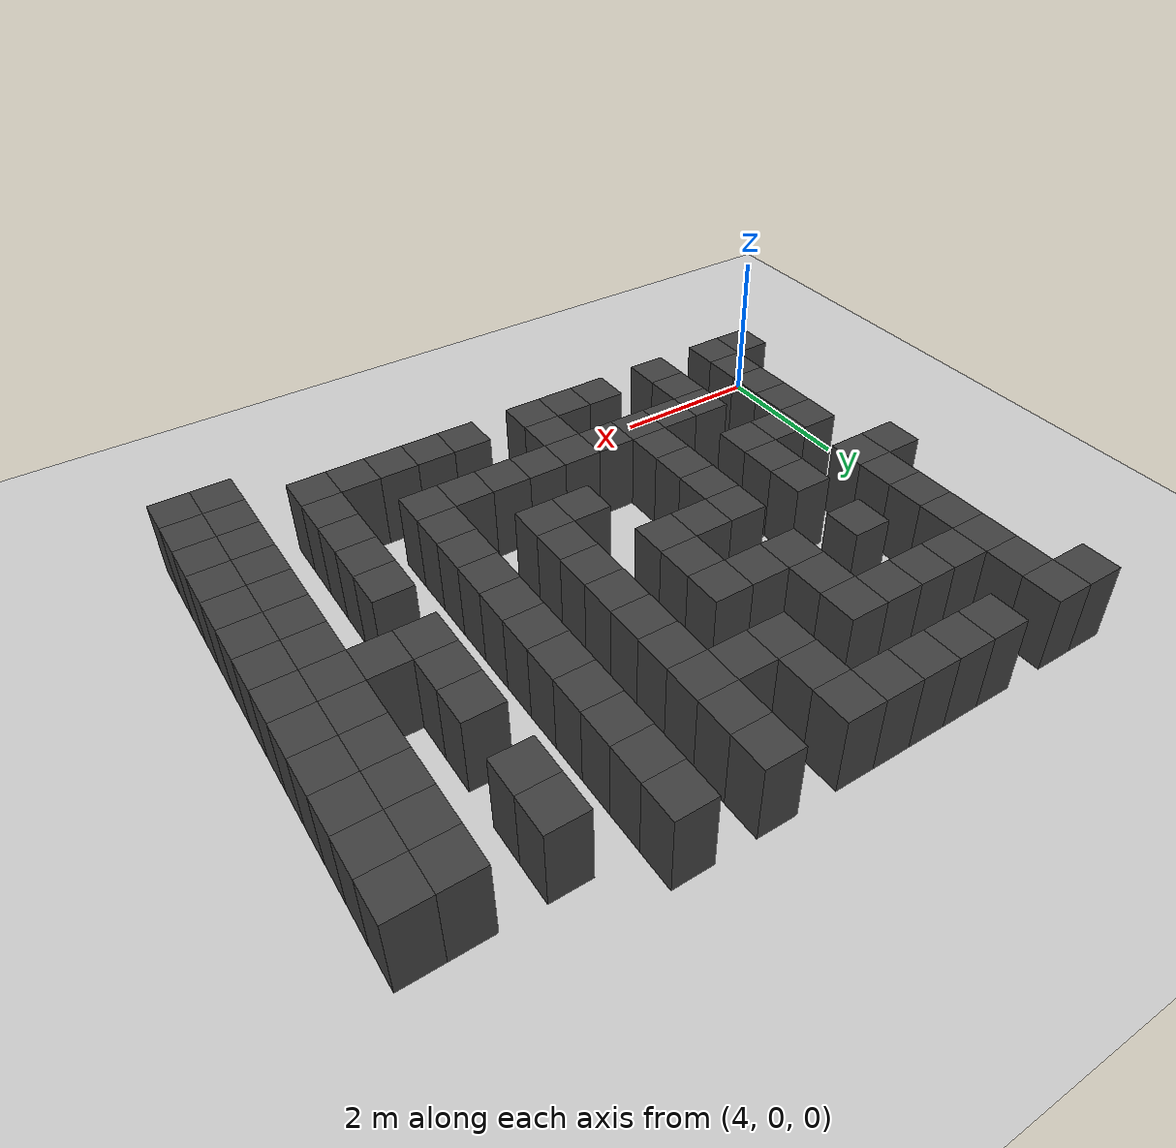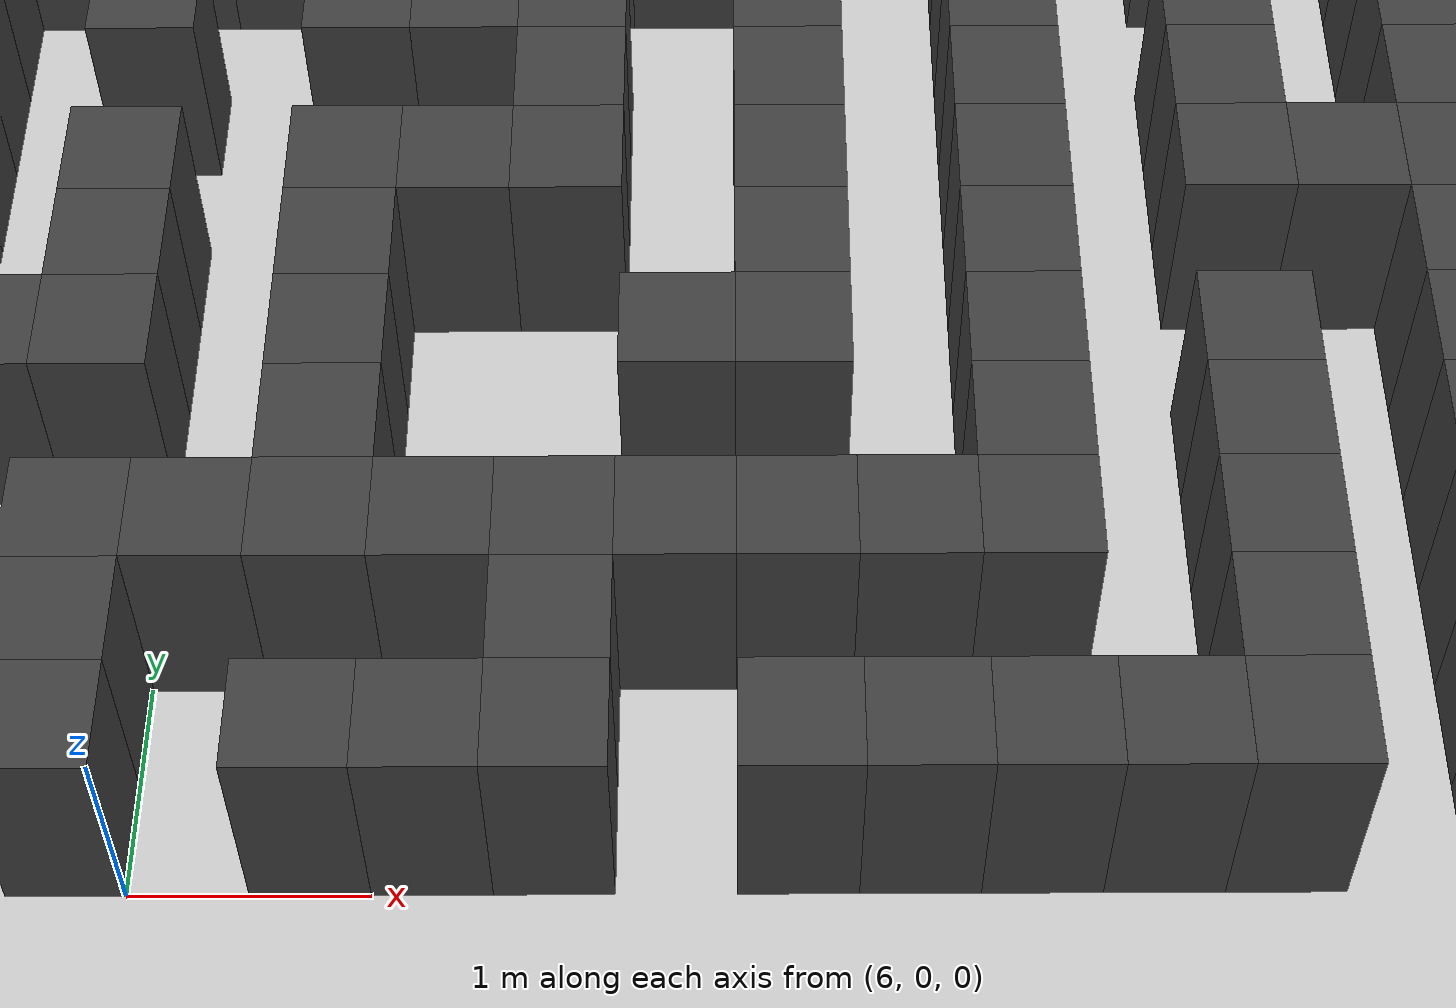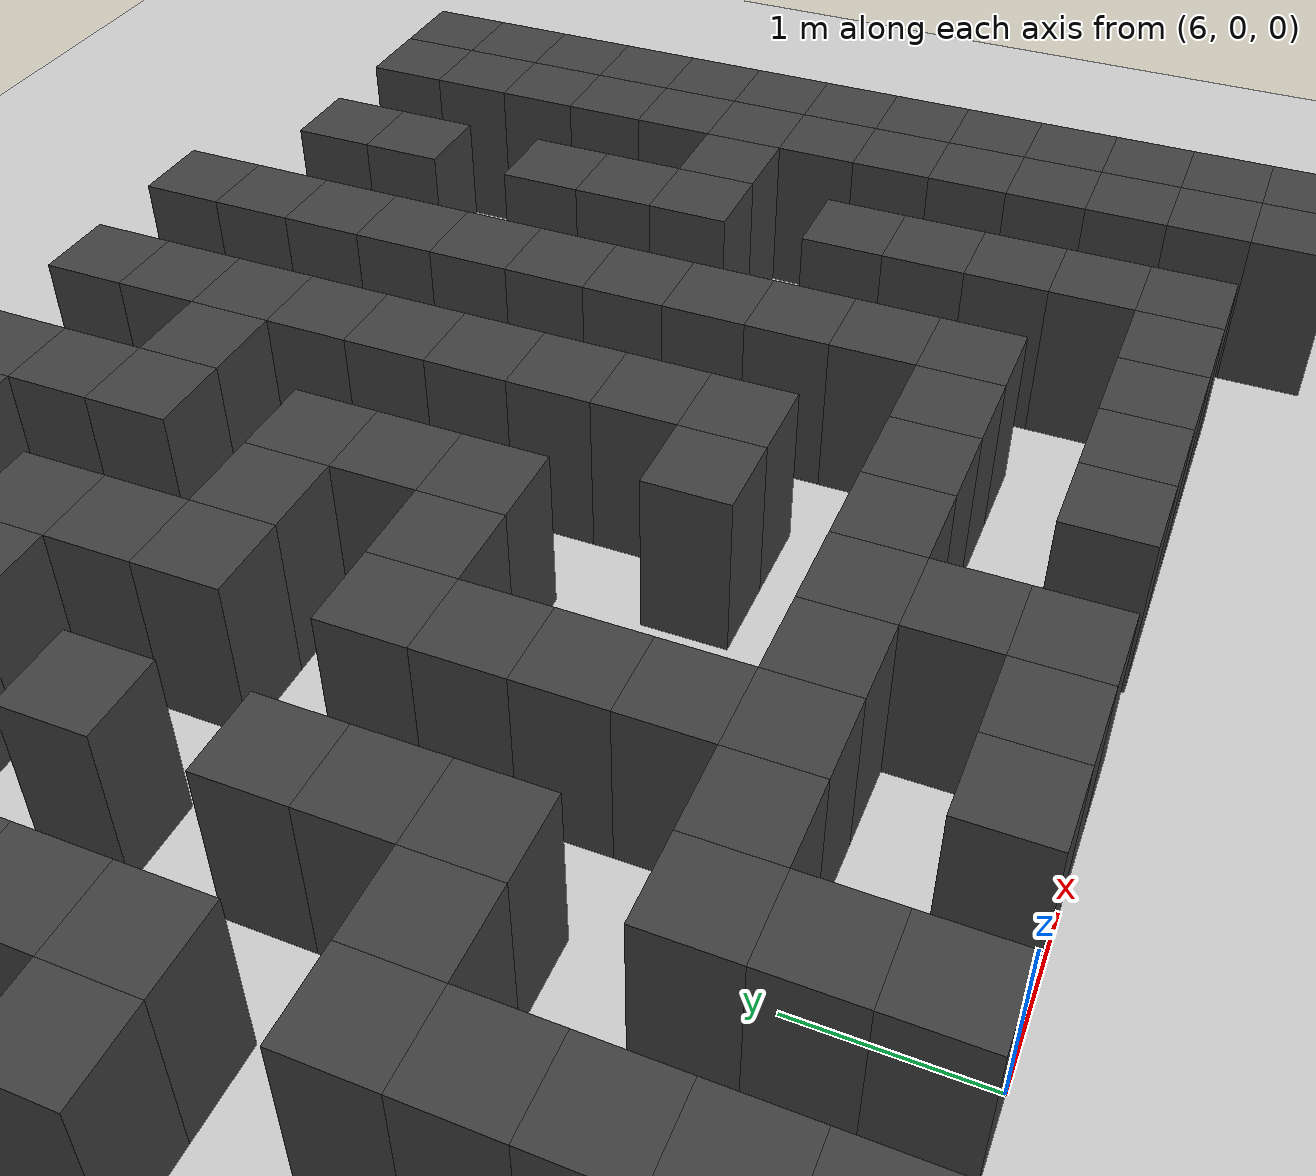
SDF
<sdf version="1.7">
 <world name="map_18505">
  <model name="ground_plane">
   <static>true</static>
   <link name="link">
    <collision name="collision">
     <geometry><plane><normal>0 0 1</normal><size>200 200</size></plane></geometry>
    </collision>
    <visual name="visual">
     <geometry><plane><normal>0 0 1</normal><size>200 200</size></plane></geometry>
     <material><ambient>0.8 0.8 0.8 1</ambient><diffuse>0.8 0.8 0.8 1</diffuse></material>
    </visual>
   </link>
  </model>
  <model name="maze_environment">
   <static>true</static>
   <link name="wall_331">
    <pose>4.250 6.250 0.500 0 0 0</pose>
    <collision name="col"><geometry><box><size>0.5 0.5 1.0</size></box></geometry></collision>
    <visual name="vis">
     <geometry><box><size>0.5 0.5 1.0</size></box></geometry>
     <material><ambient>0.15 0.15 0.15 1</ambient><diffuse>0.25 0.25 0.25 1</diffuse></material>
    </visual>
   </link>
   <link name="wall_332">
    <pose>4.750 6.250 0.500 0 0 0</pose>
    <collision name="col"><geometry><box><size>0.5 0.5 1.0</size></box></geometry></collision>
    <visual name="vis">
     <geometry><box><size>0.5 0.5 1.0</size></box></geometry>
     <material><ambient>0.15 0.15 0.15 1</ambient><diffuse>0.25 0.25 0.25 1</diffuse></material>
    </visual>
   </link>
   <link name="wall_333">
    <pose>5.750 6.250 0.500 0 0 0</pose>
    <collision name="col"><geometry><box><size>0.5 0.5 1.0</size></box></geometry></collision>
    <visual name="vis">
     <geometry><box><size>0.5 0.5 1.0</size></box></geometry>
     <material><ambient>0.15 0.15 0.15 1</ambient><diffuse>0.25 0.25 0.25 1</diffuse></material>
    </visual>
   </link>
   <link name="wall_334">
    <pose>6.250 6.250 0.500 0 0 0</pose>
    <collision name="col"><geometry><box><size>0.5 0.5 1.0</size></box></geometry></collision>
    <visual name="vis">
     <geometry><box><size>0.5 0.5 1.0</size></box></geometry>
     <material><ambient>0.15 0.15 0.15 1</ambient><diffuse>0.25 0.25 0.25 1</diffuse></material>
    </visual>
   </link>
   <link name="wall_335">
    <pose>6.750 6.250 0.500 0 0 0</pose>
    <collision name="col"><geometry><box><size>0.5 0.5 1.0</size></box></geometry></collision>
    <visual name="vis">
     <geometry><box><size>0.5 0.5 1.0</size></box></geometry>
     <material><ambient>0.15 0.15 0.15 1</ambient><diffuse>0.25 0.25 0.25 1</diffuse></material>
    </visual>
   </link>
   <link name="wall_336">
    <pose>7.250 6.250 0.500 0 0 0</pose>
    <collision name="col"><geometry><box><size>0.5 0.5 1.0</size></box></geometry></collision>
    <visual name="vis">
     <geometry><box><size>0.5 0.5 1.0</size></box></geometry>
     <material><ambient>0.15 0.15 0.15 1</ambient><diffuse>0.25 0.25 0.25 1</diffuse></material>
    </visual>
   </link>
   <link name="wall_337">
    <pose>7.750 6.250 0.500 0 0 0</pose>
    <collision name="col"><geometry><box><size>0.5 0.5 1.0</size></box></geometry></collision>
    <visual name="vis">
     <geometry><box><size>0.5 0.5 1.0</size></box></geometry>
     <material><ambient>0.15 0.15 0.15 1</ambient><diffuse>0.25 0.25 0.25 1</diffuse></material>
    </visual>
   </link>
   <link name="wall_338">
    <pose>8.750 6.250 0.500 0 0 0</pose>
    <collision name="col"><geometry><box><size>0.5 0.5 1.0</size></box></geometry></collision>
    <visual name="vis">
     <geometry><box><size>0.5 0.5 1.0</size></box></geometry>
     <material><ambient>0.15 0.15 0.15 1</ambient><diffuse>0.25 0.25 0.25 1</diffuse></material>
    </visual>
   </link>
   <link name="wall_339">
    <pose>9.750 6.250 0.500 0 0 0</pose>
    <collision name="col"><geometry><box><size>0.5 0.5 1.0</size></box></geometry></collision>
    <visual name="vis">
     <geometry><box><size>0.5 0.5 1.0</size></box></geometry>
     <material><ambient>0.15 0.15 0.15 1</ambient><diffuse>0.25 0.25 0.25 1</diffuse></material>
    </visual>
   </link>
   <link name="wall_352">
    <pose>4.750 5.750 0.500 0 0 0</pose>
    <collision name="col"><geometry><box><size>0.5 0.5 1.0</size></box></geometry></collision>
    <visual name="vis">
     <geometry><box><size>0.5 0.5 1.0</size></box></geometry>
     <material><ambient>0.15 0.15 0.15 1</ambient><diffuse>0.25 0.25 0.25 1</diffuse></material>
    </visual>
   </link>
   <link name="wall_353">
    <pose>7.750 5.750 0.500 0 0 0</pose>
    <collision name="col"><geometry><box><size>0.5 0.5 1.0</size></box></geometry></collision>
    <visual name="vis">
     <geometry><box><size>0.5 0.5 1.0</size></box></geometry>
     <material><ambient>0.15 0.15 0.15 1</ambient><diffuse>0.25 0.25 0.25 1</diffuse></material>
    </visual>
   </link>
   <link name="wall_354">
    <pose>8.750 5.750 0.500 0 0 0</pose>
    <collision name="col"><geometry><box><size>0.5 0.5 1.0</size></box></geometry></collision>
    <visual name="vis">
     <geometry><box><size>0.5 0.5 1.0</size></box></geometry>
     <material><ambient>0.15 0.15 0.15 1</ambient><diffuse>0.25 0.25 0.25 1</diffuse></material>
    </visual>
   </link>
   <link name="wall_355">
    <pose>9.750 5.750 0.500 0 0 0</pose>
    <collision name="col"><geometry><box><size>0.5 0.5 1.0</size></box></geometry></collision>
    <visual name="vis">
     <geometry><box><size>0.5 0.5 1.0</size></box></geometry>
     <material><ambient>0.15 0.15 0.15 1</ambient><diffuse>0.25 0.25 0.25 1</diffuse></material>
    </visual>
   </link>
   <link name="wall_356">
    <pose>10.750 5.750 0.500 0 0 0</pose>
    <collision name="col"><geometry><box><size>0.5 0.5 1.0</size></box></geometry></collision>
    <visual name="vis">
     <geometry><box><size>0.5 0.5 1.0</size></box></geometry>
     <material><ambient>0.15 0.15 0.15 1</ambient><diffuse>0.25 0.25 0.25 1</diffuse></material>
    </visual>
   </link>
   <link name="wall_357">
    <pose>11.750 5.750 0.500 0 0 0</pose>
    <collision name="col"><geometry><box><size>0.5 0.5 1.0</size></box></geometry></collision>
    <visual name="vis">
     <geometry><box><size>0.5 0.5 1.0</size></box></geometry>
     <material><ambient>0.15 0.15 0.15 1</ambient><diffuse>0.25 0.25 0.25 1</diffuse></material>
    </visual>
   </link>
   <link name="wall_358">
    <pose>12.250 5.750 0.500 0 0 0</pose>
    <collision name="col"><geometry><box><size>0.5 0.5 1.0</size></box></geometry></collision>
    <visual name="vis">
     <geometry><box><size>0.5 0.5 1.0</size></box></geometry>
     <material><ambient>0.15 0.15 0.15 1</ambient><diffuse>0.25 0.25 0.25 1</diffuse></material>
    </visual>
   </link>
   <link name="wall_383">
    <pose>4.750 5.250 0.500 0 0 0</pose>
    <collision name="col"><geometry><box><size>0.5 0.5 1.0</size></box></geometry></collision>
    <visual name="vis">
     <geometry><box><size>0.5 0.5 1.0</size></box></geometry>
     <material><ambient>0.15 0.15 0.15 1</ambient><diffuse>0.25 0.25 0.25 1</diffuse></material>
    </visual>
   </link>
   <link name="wall_384">
    <pose>5.250 5.250 0.500 0 0 0</pose>
    <collision name="col"><geometry><box><size>0.5 0.5 1.0</size></box></geometry></collision>
    <visual name="vis">
     <geometry><box><size>0.5 0.5 1.0</size></box></geometry>
     <material><ambient>0.15 0.15 0.15 1</ambient><diffuse>0.25 0.25 0.25 1</diffuse></material>
    </visual>
   </link>
   <link name="wall_385">
    <pose>5.750 5.250 0.500 0 0 0</pose>
    <collision name="col"><geometry><box><size>0.5 0.5 1.0</size></box></geometry></collision>
    <visual name="vis">
     <geometry><box><size>0.5 0.5 1.0</size></box></geometry>
     <material><ambient>0.15 0.15 0.15 1</ambient><diffuse>0.25 0.25 0.25 1</diffuse></material>
    </visual>
   </link>
   <link name="wall_386">
    <pose>6.250 5.250 0.500 0 0 0</pose>
    <collision name="col"><geometry><box><size>0.5 0.5 1.0</size></box></geometry></collision>
    <visual name="vis">
     <geometry><box><size>0.5 0.5 1.0</size></box></geometry>
     <material><ambient>0.15 0.15 0.15 1</ambient><diffuse>0.25 0.25 0.25 1</diffuse></material>
    </visual>
   </link>
   <link name="wall_387">
    <pose>6.750 5.250 0.500 0 0 0</pose>
    <collision name="col"><geometry><box><size>0.5 0.5 1.0</size></box></geometry></collision>
    <visual name="vis">
     <geometry><box><size>0.5 0.5 1.0</size></box></geometry>
     <material><ambient>0.15 0.15 0.15 1</ambient><diffuse>0.25 0.25 0.25 1</diffuse></material>
    </visual>
   </link>
   <link name="wall_388">
    <pose>7.750 5.250 0.500 0 0 0</pose>
    <collision name="col"><geometry><box><size>0.5 0.5 1.0</size></box></geometry></collision>
    <visual name="vis">
     <geometry><box><size>0.5 0.5 1.0</size></box></geometry>
     <material><ambient>0.15 0.15 0.15 1</ambient><diffuse>0.25 0.25 0.25 1</diffuse></material>
    </visual>
   </link>
   <link name="wall_389">
    <pose>8.250 5.250 0.500 0 0 0</pose>
    <collision name="col"><geometry><box><size>0.5 0.5 1.0</size></box></geometry></collision>
    <visual name="vis">
     <geometry><box><size>0.5 0.5 1.0</size></box></geometry>
     <material><ambient>0.15 0.15 0.15 1</ambient><diffuse>0.25 0.25 0.25 1</diffuse></material>
    </visual>
   </link>
   <link name="wall_390">
    <pose>8.750 5.250 0.500 0 0 0</pose>
    <collision name="col"><geometry><box><size>0.5 0.5 1.0</size></box></geometry></collision>
    <visual name="vis">
     <geometry><box><size>0.5 0.5 1.0</size></box></geometry>
     <material><ambient>0.15 0.15 0.15 1</ambient><diffuse>0.25 0.25 0.25 1</diffuse></material>
    </visual>
   </link>
   <link name="wall_391">
    <pose>9.750 5.250 0.500 0 0 0</pose>
    <collision name="col"><geometry><box><size>0.5 0.5 1.0</size></box></geometry></collision>
    <visual name="vis">
     <geometry><box><size>0.5 0.5 1.0</size></box></geometry>
     <material><ambient>0.15 0.15 0.15 1</ambient><diffuse>0.25 0.25 0.25 1</diffuse></material>
    </visual>
   </link>
   <link name="wall_392">
    <pose>10.750 5.250 0.500 0 0 0</pose>
    <collision name="col"><geometry><box><size>0.5 0.5 1.0</size></box></geometry></collision>
    <visual name="vis">
     <geometry><box><size>0.5 0.5 1.0</size></box></geometry>
     <material><ambient>0.15 0.15 0.15 1</ambient><diffuse>0.25 0.25 0.25 1</diffuse></material>
    </visual>
   </link>
   <link name="wall_393">
    <pose>11.750 5.250 0.500 0 0 0</pose>
    <collision name="col"><geometry><box><size>0.5 0.5 1.0</size></box></geometry></collision>
    <visual name="vis">
     <geometry><box><size>0.5 0.5 1.0</size></box></geometry>
     <material><ambient>0.15 0.15 0.15 1</ambient><diffuse>0.25 0.25 0.25 1</diffuse></material>
    </visual>
   </link>
   <link name="wall_394">
    <pose>12.250 5.250 0.500 0 0 0</pose>
    <collision name="col"><geometry><box><size>0.5 0.5 1.0</size></box></geometry></collision>
    <visual name="vis">
     <geometry><box><size>0.5 0.5 1.0</size></box></geometry>
     <material><ambient>0.15 0.15 0.15 1</ambient><diffuse>0.25 0.25 0.25 1</diffuse></material>
    </visual>
   </link>
   <link name="wall_404">
    <pose>4.750 4.750 0.500 0 0 0</pose>
    <collision name="col"><geometry><box><size>0.5 0.5 1.0</size></box></geometry></collision>
    <visual name="vis">
     <geometry><box><size>0.5 0.5 1.0</size></box></geometry>
     <material><ambient>0.15 0.15 0.15 1</ambient><diffuse>0.25 0.25 0.25 1</diffuse></material>
    </visual>
   </link>
   <link name="wall_405">
    <pose>6.750 4.750 0.500 0 0 0</pose>
    <collision name="col"><geometry><box><size>0.5 0.5 1.0</size></box></geometry></collision>
    <visual name="vis">
     <geometry><box><size>0.5 0.5 1.0</size></box></geometry>
     <material><ambient>0.15 0.15 0.15 1</ambient><diffuse>0.25 0.25 0.25 1</diffuse></material>
    </visual>
   </link>
   <link name="wall_406">
    <pose>8.750 4.750 0.500 0 0 0</pose>
    <collision name="col"><geometry><box><size>0.5 0.5 1.0</size></box></geometry></collision>
    <visual name="vis">
     <geometry><box><size>0.5 0.5 1.0</size></box></geometry>
     <material><ambient>0.15 0.15 0.15 1</ambient><diffuse>0.25 0.25 0.25 1</diffuse></material>
    </visual>
   </link>
   <link name="wall_407">
    <pose>9.750 4.750 0.500 0 0 0</pose>
    <collision name="col"><geometry><box><size>0.5 0.5 1.0</size></box></geometry></collision>
    <visual name="vis">
     <geometry><box><size>0.5 0.5 1.0</size></box></geometry>
     <material><ambient>0.15 0.15 0.15 1</ambient><diffuse>0.25 0.25 0.25 1</diffuse></material>
    </visual>
   </link>
   <link name="wall_408">
    <pose>11.750 4.750 0.500 0 0 0</pose>
    <collision name="col"><geometry><box><size>0.5 0.5 1.0</size></box></geometry></collision>
    <visual name="vis">
     <geometry><box><size>0.5 0.5 1.0</size></box></geometry>
     <material><ambient>0.15 0.15 0.15 1</ambient><diffuse>0.25 0.25 0.25 1</diffuse></material>
    </visual>
   </link>
   <link name="wall_409">
    <pose>12.250 4.750 0.500 0 0 0</pose>
    <collision name="col"><geometry><box><size>0.5 0.5 1.0</size></box></geometry></collision>
    <visual name="vis">
     <geometry><box><size>0.5 0.5 1.0</size></box></geometry>
     <material><ambient>0.15 0.15 0.15 1</ambient><diffuse>0.25 0.25 0.25 1</diffuse></material>
    </visual>
   </link>
   <link name="wall_435">
    <pose>4.750 4.250 0.500 0 0 0</pose>
    <collision name="col"><geometry><box><size>0.5 0.5 1.0</size></box></geometry></collision>
    <visual name="vis">
     <geometry><box><size>0.5 0.5 1.0</size></box></geometry>
     <material><ambient>0.15 0.15 0.15 1</ambient><diffuse>0.25 0.25 0.25 1</diffuse></material>
    </visual>
   </link>
   <link name="wall_436">
    <pose>5.750 4.250 0.500 0 0 0</pose>
    <collision name="col"><geometry><box><size>0.5 0.5 1.0</size></box></geometry></collision>
    <visual name="vis">
     <geometry><box><size>0.5 0.5 1.0</size></box></geometry>
     <material><ambient>0.15 0.15 0.15 1</ambient><diffuse>0.25 0.25 0.25 1</diffuse></material>
    </visual>
   </link>
   <link name="wall_437">
    <pose>6.750 4.250 0.500 0 0 0</pose>
    <collision name="col"><geometry><box><size>0.5 0.5 1.0</size></box></geometry></collision>
    <visual name="vis">
     <geometry><box><size>0.5 0.5 1.0</size></box></geometry>
     <material><ambient>0.15 0.15 0.15 1</ambient><diffuse>0.25 0.25 0.25 1</diffuse></material>
    </visual>
   </link>
   <link name="wall_438">
    <pose>7.250 4.250 0.500 0 0 0</pose>
    <collision name="col"><geometry><box><size>0.5 0.5 1.0</size></box></geometry></collision>
    <visual name="vis">
     <geometry><box><size>0.5 0.5 1.0</size></box></geometry>
     <material><ambient>0.15 0.15 0.15 1</ambient><diffuse>0.25 0.25 0.25 1</diffuse></material>
    </visual>
   </link>
   <link name="wall_439">
    <pose>7.750 4.250 0.500 0 0 0</pose>
    <collision name="col"><geometry><box><size>0.5 0.5 1.0</size></box></geometry></collision>
    <visual name="vis">
     <geometry><box><size>0.5 0.5 1.0</size></box></geometry>
     <material><ambient>0.15 0.15 0.15 1</ambient><diffuse>0.25 0.25 0.25 1</diffuse></material>
    </visual>
   </link>
   <link name="wall_440">
    <pose>8.750 4.250 0.500 0 0 0</pose>
    <collision name="col"><geometry><box><size>0.5 0.5 1.0</size></box></geometry></collision>
    <visual name="vis">
     <geometry><box><size>0.5 0.5 1.0</size></box></geometry>
     <material><ambient>0.15 0.15 0.15 1</ambient><diffuse>0.25 0.25 0.25 1</diffuse></material>
    </visual>
   </link>
   <link name="wall_441">
    <pose>9.750 4.250 0.500 0 0 0</pose>
    <collision name="col"><geometry><box><size>0.5 0.5 1.0</size></box></geometry></collision>
    <visual name="vis">
     <geometry><box><size>0.5 0.5 1.0</size></box></geometry>
     <material><ambient>0.15 0.15 0.15 1</ambient><diffuse>0.25 0.25 0.25 1</diffuse></material>
    </visual>
   </link>
   <link name="wall_442">
    <pose>10.750 4.250 0.500 0 0 0</pose>
    <collision name="col"><geometry><box><size>0.5 0.5 1.0</size></box></geometry></collision>
    <visual name="vis">
     <geometry><box><size>0.5 0.5 1.0</size></box></geometry>
     <material><ambient>0.15 0.15 0.15 1</ambient><diffuse>0.25 0.25 0.25 1</diffuse></material>
    </visual>
   </link>
   <link name="wall_443">
    <pose>11.750 4.250 0.500 0 0 0</pose>
    <collision name="col"><geometry><box><size>0.5 0.5 1.0</size></box></geometry></collision>
    <visual name="vis">
     <geometry><box><size>0.5 0.5 1.0</size></box></geometry>
     <material><ambient>0.15 0.15 0.15 1</ambient><diffuse>0.25 0.25 0.25 1</diffuse></material>
    </visual>
   </link>
   <link name="wall_444">
    <pose>12.250 4.250 0.500 0 0 0</pose>
    <collision name="col"><geometry><box><size>0.5 0.5 1.0</size></box></geometry></collision>
    <visual name="vis">
     <geometry><box><size>0.5 0.5 1.0</size></box></geometry>
     <material><ambient>0.15 0.15 0.15 1</ambient><diffuse>0.25 0.25 0.25 1</diffuse></material>
    </visual>
   </link>
   <link name="wall_454">
    <pose>4.750 3.750 0.500 0 0 0</pose>
    <collision name="col"><geometry><box><size>0.5 0.5 1.0</size></box></geometry></collision>
    <visual name="vis">
     <geometry><box><size>0.5 0.5 1.0</size></box></geometry>
     <material><ambient>0.15 0.15 0.15 1</ambient><diffuse>0.25 0.25 0.25 1</diffuse></material>
    </visual>
   </link>
   <link name="wall_455">
    <pose>7.750 3.750 0.500 0 0 0</pose>
    <collision name="col"><geometry><box><size>0.5 0.5 1.0</size></box></geometry></collision>
    <visual name="vis">
     <geometry><box><size>0.5 0.5 1.0</size></box></geometry>
     <material><ambient>0.15 0.15 0.15 1</ambient><diffuse>0.25 0.25 0.25 1</diffuse></material>
    </visual>
   </link>
   <link name="wall_456">
    <pose>8.750 3.750 0.500 0 0 0</pose>
    <collision name="col"><geometry><box><size>0.5 0.5 1.0</size></box></geometry></collision>
    <visual name="vis">
     <geometry><box><size>0.5 0.5 1.0</size></box></geometry>
     <material><ambient>0.15 0.15 0.15 1</ambient><diffuse>0.25 0.25 0.25 1</diffuse></material>
    </visual>
   </link>
   <link name="wall_457">
    <pose>9.750 3.750 0.500 0 0 0</pose>
    <collision name="col"><geometry><box><size>0.5 0.5 1.0</size></box></geometry></collision>
    <visual name="vis">
     <geometry><box><size>0.5 0.5 1.0</size></box></geometry>
     <material><ambient>0.15 0.15 0.15 1</ambient><diffuse>0.25 0.25 0.25 1</diffuse></material>
    </visual>
   </link>
   <link name="wall_458">
    <pose>10.750 3.750 0.500 0 0 0</pose>
    <collision name="col"><geometry><box><size>0.5 0.5 1.0</size></box></geometry></collision>
    <visual name="vis">
     <geometry><box><size>0.5 0.5 1.0</size></box></geometry>
     <material><ambient>0.15 0.15 0.15 1</ambient><diffuse>0.25 0.25 0.25 1</diffuse></material>
    </visual>
   </link>
   <link name="wall_459">
    <pose>11.750 3.750 0.500 0 0 0</pose>
    <collision name="col"><geometry><box><size>0.5 0.5 1.0</size></box></geometry></collision>
    <visual name="vis">
     <geometry><box><size>0.5 0.5 1.0</size></box></geometry>
     <material><ambient>0.15 0.15 0.15 1</ambient><diffuse>0.25 0.25 0.25 1</diffuse></material>
    </visual>
   </link>
   <link name="wall_460">
    <pose>12.250 3.750 0.500 0 0 0</pose>
    <collision name="col"><geometry><box><size>0.5 0.5 1.0</size></box></geometry></collision>
    <visual name="vis">
     <geometry><box><size>0.5 0.5 1.0</size></box></geometry>
     <material><ambient>0.15 0.15 0.15 1</ambient><diffuse>0.25 0.25 0.25 1</diffuse></material>
    </visual>
   </link>
   <link name="wall_484">
    <pose>4.250 3.250 0.500 0 0 0</pose>
    <collision name="col"><geometry><box><size>0.5 0.5 1.0</size></box></geometry></collision>
    <visual name="vis">
     <geometry><box><size>0.5 0.5 1.0</size></box></geometry>
     <material><ambient>0.15 0.15 0.15 1</ambient><diffuse>0.25 0.25 0.25 1</diffuse></material>
    </visual>
   </link>
   <link name="wall_485">
    <pose>4.750 3.250 0.500 0 0 0</pose>
    <collision name="col"><geometry><box><size>0.5 0.5 1.0</size></box></geometry></collision>
    <visual name="vis">
     <geometry><box><size>0.5 0.5 1.0</size></box></geometry>
     <material><ambient>0.15 0.15 0.15 1</ambient><diffuse>0.25 0.25 0.25 1</diffuse></material>
    </visual>
   </link>
   <link name="wall_486">
    <pose>5.750 3.250 0.500 0 0 0</pose>
    <collision name="col"><geometry><box><size>0.5 0.5 1.0</size></box></geometry></collision>
    <visual name="vis">
     <geometry><box><size>0.5 0.5 1.0</size></box></geometry>
     <material><ambient>0.15 0.15 0.15 1</ambient><diffuse>0.25 0.25 0.25 1</diffuse></material>
    </visual>
   </link>
   <link name="wall_487">
    <pose>6.750 3.250 0.500 0 0 0</pose>
    <collision name="col"><geometry><box><size>0.5 0.5 1.0</size></box></geometry></collision>
    <visual name="vis">
     <geometry><box><size>0.5 0.5 1.0</size></box></geometry>
     <material><ambient>0.15 0.15 0.15 1</ambient><diffuse>0.25 0.25 0.25 1</diffuse></material>
    </visual>
   </link>
   <link name="wall_488">
    <pose>7.250 3.250 0.500 0 0 0</pose>
    <collision name="col"><geometry><box><size>0.5 0.5 1.0</size></box></geometry></collision>
    <visual name="vis">
     <geometry><box><size>0.5 0.5 1.0</size></box></geometry>
     <material><ambient>0.15 0.15 0.15 1</ambient><diffuse>0.25 0.25 0.25 1</diffuse></material>
    </visual>
   </link>
   <link name="wall_489">
    <pose>7.750 3.250 0.500 0 0 0</pose>
    <collision name="col"><geometry><box><size>0.5 0.5 1.0</size></box></geometry></collision>
    <visual name="vis">
     <geometry><box><size>0.5 0.5 1.0</size></box></geometry>
     <material><ambient>0.15 0.15 0.15 1</ambient><diffuse>0.25 0.25 0.25 1</diffuse></material>
    </visual>
   </link>
   <link name="wall_490">
    <pose>8.750 3.250 0.500 0 0 0</pose>
    <collision name="col"><geometry><box><size>0.5 0.5 1.0</size></box></geometry></collision>
    <visual name="vis">
     <geometry><box><size>0.5 0.5 1.0</size></box></geometry>
     <material><ambient>0.15 0.15 0.15 1</ambient><diffuse>0.25 0.25 0.25 1</diffuse></material>
    </visual>
   </link>
   <link name="wall_491">
    <pose>9.750 3.250 0.500 0 0 0</pose>
    <collision name="col"><geometry><box><size>0.5 0.5 1.0</size></box></geometry></collision>
    <visual name="vis">
     <geometry><box><size>0.5 0.5 1.0</size></box></geometry>
     <material><ambient>0.15 0.15 0.15 1</ambient><diffuse>0.25 0.25 0.25 1</diffuse></material>
    </visual>
   </link>
   <link name="wall_492">
    <pose>10.750 3.250 0.500 0 0 0</pose>
    <collision name="col"><geometry><box><size>0.5 0.5 1.0</size></box></geometry></collision>
    <visual name="vis">
     <geometry><box><size>0.5 0.5 1.0</size></box></geometry>
     <material><ambient>0.15 0.15 0.15 1</ambient><diffuse>0.25 0.25 0.25 1</diffuse></material>
    </visual>
   </link>
   <link name="wall_493">
    <pose>11.250 3.250 0.500 0 0 0</pose>
    <collision name="col"><geometry><box><size>0.5 0.5 1.0</size></box></geometry></collision>
    <visual name="vis">
     <geometry><box><size>0.5 0.5 1.0</size></box></geometry>
     <material><ambient>0.15 0.15 0.15 1</ambient><diffuse>0.25 0.25 0.25 1</diffuse></material>
    </visual>
   </link>
   <link name="wall_494">
    <pose>11.750 3.250 0.500 0 0 0</pose>
    <collision name="col"><geometry><box><size>0.5 0.5 1.0</size></box></geometry></collision>
    <visual name="vis">
     <geometry><box><size>0.5 0.5 1.0</size></box></geometry>
     <material><ambient>0.15 0.15 0.15 1</ambient><diffuse>0.25 0.25 0.25 1</diffuse></material>
    </visual>
   </link>
   <link name="wall_495">
    <pose>12.250 3.250 0.500 0 0 0</pose>
    <collision name="col"><geometry><box><size>0.5 0.5 1.0</size></box></geometry></collision>
    <visual name="vis">
     <geometry><box><size>0.5 0.5 1.0</size></box></geometry>
     <material><ambient>0.15 0.15 0.15 1</ambient><diffuse>0.25 0.25 0.25 1</diffuse></material>
    </visual>
   </link>
   <link name="wall_505">
    <pose>5.750 2.750 0.500 0 0 0</pose>
    <collision name="col"><geometry><box><size>0.5 0.5 1.0</size></box></geometry></collision>
    <visual name="vis">
     <geometry><box><size>0.5 0.5 1.0</size></box></geometry>
     <material><ambient>0.15 0.15 0.15 1</ambient><diffuse>0.25 0.25 0.25 1</diffuse></material>
    </visual>
   </link>
   <link name="wall_506">
    <pose>6.750 2.750 0.500 0 0 0</pose>
    <collision name="col"><geometry><box><size>0.5 0.5 1.0</size></box></geometry></collision>
    <visual name="vis">
     <geometry><box><size>0.5 0.5 1.0</size></box></geometry>
     <material><ambient>0.15 0.15 0.15 1</ambient><diffuse>0.25 0.25 0.25 1</diffuse></material>
    </visual>
   </link>
   <link name="wall_507">
    <pose>8.750 2.750 0.500 0 0 0</pose>
    <collision name="col"><geometry><box><size>0.5 0.5 1.0</size></box></geometry></collision>
    <visual name="vis">
     <geometry><box><size>0.5 0.5 1.0</size></box></geometry>
     <material><ambient>0.15 0.15 0.15 1</ambient><diffuse>0.25 0.25 0.25 1</diffuse></material>
    </visual>
   </link>
   <link name="wall_508">
    <pose>9.750 2.750 0.500 0 0 0</pose>
    <collision name="col"><geometry><box><size>0.5 0.5 1.0</size></box></geometry></collision>
    <visual name="vis">
     <geometry><box><size>0.5 0.5 1.0</size></box></geometry>
     <material><ambient>0.15 0.15 0.15 1</ambient><diffuse>0.25 0.25 0.25 1</diffuse></material>
    </visual>
   </link>
   <link name="wall_509">
    <pose>11.750 2.750 0.500 0 0 0</pose>
    <collision name="col"><geometry><box><size>0.5 0.5 1.0</size></box></geometry></collision>
    <visual name="vis">
     <geometry><box><size>0.5 0.5 1.0</size></box></geometry>
     <material><ambient>0.15 0.15 0.15 1</ambient><diffuse>0.25 0.25 0.25 1</diffuse></material>
    </visual>
   </link>
   <link name="wall_510">
    <pose>12.250 2.750 0.500 0 0 0</pose>
    <collision name="col"><geometry><box><size>0.5 0.5 1.0</size></box></geometry></collision>
    <visual name="vis">
     <geometry><box><size>0.5 0.5 1.0</size></box></geometry>
     <material><ambient>0.15 0.15 0.15 1</ambient><diffuse>0.25 0.25 0.25 1</diffuse></material>
    </visual>
   </link>
   <link name="wall_535">
    <pose>4.750 2.250 0.500 0 0 0</pose>
    <collision name="col"><geometry><box><size>0.5 0.5 1.0</size></box></geometry></collision>
    <visual name="vis">
     <geometry><box><size>0.5 0.5 1.0</size></box></geometry>
     <material><ambient>0.15 0.15 0.15 1</ambient><diffuse>0.25 0.25 0.25 1</diffuse></material>
    </visual>
   </link>
   <link name="wall_536">
    <pose>5.250 2.250 0.500 0 0 0</pose>
    <collision name="col"><geometry><box><size>0.5 0.5 1.0</size></box></geometry></collision>
    <visual name="vis">
     <geometry><box><size>0.5 0.5 1.0</size></box></geometry>
     <material><ambient>0.15 0.15 0.15 1</ambient><diffuse>0.25 0.25 0.25 1</diffuse></material>
    </visual>
   </link>
   <link name="wall_537">
    <pose>5.750 2.250 0.500 0 0 0</pose>
    <collision name="col"><geometry><box><size>0.5 0.5 1.0</size></box></geometry></collision>
    <visual name="vis">
     <geometry><box><size>0.5 0.5 1.0</size></box></geometry>
     <material><ambient>0.15 0.15 0.15 1</ambient><diffuse>0.25 0.25 0.25 1</diffuse></material>
    </visual>
   </link>
   <link name="wall_538">
    <pose>6.750 2.250 0.500 0 0 0</pose>
    <collision name="col"><geometry><box><size>0.5 0.5 1.0</size></box></geometry></collision>
    <visual name="vis">
     <geometry><box><size>0.5 0.5 1.0</size></box></geometry>
     <material><ambient>0.15 0.15 0.15 1</ambient><diffuse>0.25 0.25 0.25 1</diffuse></material>
    </visual>
   </link>
   <link name="wall_539">
    <pose>8.250 2.250 0.500 0 0 0</pose>
    <collision name="col"><geometry><box><size>0.5 0.5 1.0</size></box></geometry></collision>
    <visual name="vis">
     <geometry><box><size>0.5 0.5 1.0</size></box></geometry>
     <material><ambient>0.15 0.15 0.15 1</ambient><diffuse>0.25 0.25 0.25 1</diffuse></material>
    </visual>
   </link>
   <link name="wall_540">
    <pose>8.750 2.250 0.500 0 0 0</pose>
    <collision name="col"><geometry><box><size>0.5 0.5 1.0</size></box></geometry></collision>
    <visual name="vis">
     <geometry><box><size>0.5 0.5 1.0</size></box></geometry>
     <material><ambient>0.15 0.15 0.15 1</ambient><diffuse>0.25 0.25 0.25 1</diffuse></material>
    </visual>
   </link>
   <link name="wall_541">
    <pose>9.750 2.250 0.500 0 0 0</pose>
    <collision name="col"><geometry><box><size>0.5 0.5 1.0</size></box></geometry></collision>
    <visual name="vis">
     <geometry><box><size>0.5 0.5 1.0</size></box></geometry>
     <material><ambient>0.15 0.15 0.15 1</ambient><diffuse>0.25 0.25 0.25 1</diffuse></material>
    </visual>
   </link>
   <link name="wall_542">
    <pose>10.750 2.250 0.500 0 0 0</pose>
    <collision name="col"><geometry><box><size>0.5 0.5 1.0</size></box></geometry></collision>
    <visual name="vis">
     <geometry><box><size>0.5 0.5 1.0</size></box></geometry>
     <material><ambient>0.15 0.15 0.15 1</ambient><diffuse>0.25 0.25 0.25 1</diffuse></material>
    </visual>
   </link>
   <link name="wall_543">
    <pose>11.750 2.250 0.500 0 0 0</pose>
    <collision name="col"><geometry><box><size>0.5 0.5 1.0</size></box></geometry></collision>
    <visual name="vis">
     <geometry><box><size>0.5 0.5 1.0</size></box></geometry>
     <material><ambient>0.15 0.15 0.15 1</ambient><diffuse>0.25 0.25 0.25 1</diffuse></material>
    </visual>
   </link>
   <link name="wall_544">
    <pose>12.250 2.250 0.500 0 0 0</pose>
    <collision name="col"><geometry><box><size>0.5 0.5 1.0</size></box></geometry></collision>
    <visual name="vis">
     <geometry><box><size>0.5 0.5 1.0</size></box></geometry>
     <material><ambient>0.15 0.15 0.15 1</ambient><diffuse>0.25 0.25 0.25 1</diffuse></material>
    </visual>
   </link>
   <link name="wall_555">
    <pose>4.750 1.750 0.500 0 0 0</pose>
    <collision name="col"><geometry><box><size>0.5 0.5 1.0</size></box></geometry></collision>
    <visual name="vis">
     <geometry><box><size>0.5 0.5 1.0</size></box></geometry>
     <material><ambient>0.15 0.15 0.15 1</ambient><diffuse>0.25 0.25 0.25 1</diffuse></material>
    </visual>
   </link>
   <link name="wall_556">
    <pose>6.750 1.750 0.500 0 0 0</pose>
    <collision name="col"><geometry><box><size>0.5 0.5 1.0</size></box></geometry></collision>
    <visual name="vis">
     <geometry><box><size>0.5 0.5 1.0</size></box></geometry>
     <material><ambient>0.15 0.15 0.15 1</ambient><diffuse>0.25 0.25 0.25 1</diffuse></material>
    </visual>
   </link>
   <link name="wall_557">
    <pose>9.750 1.750 0.500 0 0 0</pose>
    <collision name="col"><geometry><box><size>0.5 0.5 1.0</size></box></geometry></collision>
    <visual name="vis">
     <geometry><box><size>0.5 0.5 1.0</size></box></geometry>
     <material><ambient>0.15 0.15 0.15 1</ambient><diffuse>0.25 0.25 0.25 1</diffuse></material>
    </visual>
   </link>
   <link name="wall_558">
    <pose>10.750 1.750 0.500 0 0 0</pose>
    <collision name="col"><geometry><box><size>0.5 0.5 1.0</size></box></geometry></collision>
    <visual name="vis">
     <geometry><box><size>0.5 0.5 1.0</size></box></geometry>
     <material><ambient>0.15 0.15 0.15 1</ambient><diffuse>0.25 0.25 0.25 1</diffuse></material>
    </visual>
   </link>
   <link name="wall_559">
    <pose>11.750 1.750 0.500 0 0 0</pose>
    <collision name="col"><geometry><box><size>0.5 0.5 1.0</size></box></geometry></collision>
    <visual name="vis">
     <geometry><box><size>0.5 0.5 1.0</size></box></geometry>
     <material><ambient>0.15 0.15 0.15 1</ambient><diffuse>0.25 0.25 0.25 1</diffuse></material>
    </visual>
   </link>
   <link name="wall_560">
    <pose>12.250 1.750 0.500 0 0 0</pose>
    <collision name="col"><geometry><box><size>0.5 0.5 1.0</size></box></geometry></collision>
    <visual name="vis">
     <geometry><box><size>0.5 0.5 1.0</size></box></geometry>
     <material><ambient>0.15 0.15 0.15 1</ambient><diffuse>0.25 0.25 0.25 1</diffuse></material>
    </visual>
   </link>
   <link name="wall_586">
    <pose>4.750 1.250 0.500 0 0 0</pose>
    <collision name="col"><geometry><box><size>0.5 0.5 1.0</size></box></geometry></collision>
    <visual name="vis">
     <geometry><box><size>0.5 0.5 1.0</size></box></geometry>
     <material><ambient>0.15 0.15 0.15 1</ambient><diffuse>0.25 0.25 0.25 1</diffuse></material>
    </visual>
   </link>
   <link name="wall_587">
    <pose>5.750 1.250 0.500 0 0 0</pose>
    <collision name="col"><geometry><box><size>0.5 0.5 1.0</size></box></geometry></collision>
    <visual name="vis">
     <geometry><box><size>0.5 0.5 1.0</size></box></geometry>
     <material><ambient>0.15 0.15 0.15 1</ambient><diffuse>0.25 0.25 0.25 1</diffuse></material>
    </visual>
   </link>
   <link name="wall_588">
    <pose>6.250 1.250 0.500 0 0 0</pose>
    <collision name="col"><geometry><box><size>0.5 0.5 1.0</size></box></geometry></collision>
    <visual name="vis">
     <geometry><box><size>0.5 0.5 1.0</size></box></geometry>
     <material><ambient>0.15 0.15 0.15 1</ambient><diffuse>0.25 0.25 0.25 1</diffuse></material>
    </visual>
   </link>
   <link name="wall_589">
    <pose>6.750 1.250 0.500 0 0 0</pose>
    <collision name="col"><geometry><box><size>0.5 0.5 1.0</size></box></geometry></collision>
    <visual name="vis">
     <geometry><box><size>0.5 0.5 1.0</size></box></geometry>
     <material><ambient>0.15 0.15 0.15 1</ambient><diffuse>0.25 0.25 0.25 1</diffuse></material>
    </visual>
   </link>
   <link name="wall_590">
    <pose>7.250 1.250 0.500 0 0 0</pose>
    <collision name="col"><geometry><box><size>0.5 0.5 1.0</size></box></geometry></collision>
    <visual name="vis">
     <geometry><box><size>0.5 0.5 1.0</size></box></geometry>
     <material><ambient>0.15 0.15 0.15 1</ambient><diffuse>0.25 0.25 0.25 1</diffuse></material>
    </visual>
   </link>
   <link name="wall_591">
    <pose>7.750 1.250 0.500 0 0 0</pose>
    <collision name="col"><geometry><box><size>0.5 0.5 1.0</size></box></geometry></collision>
    <visual name="vis">
     <geometry><box><size>0.5 0.5 1.0</size></box></geometry>
     <material><ambient>0.15 0.15 0.15 1</ambient><diffuse>0.25 0.25 0.25 1</diffuse></material>
    </visual>
   </link>
   <link name="wall_592">
    <pose>8.250 1.250 0.500 0 0 0</pose>
    <collision name="col"><geometry><box><size>0.5 0.5 1.0</size></box></geometry></collision>
    <visual name="vis">
     <geometry><box><size>0.5 0.5 1.0</size></box></geometry>
     <material><ambient>0.15 0.15 0.15 1</ambient><diffuse>0.25 0.25 0.25 1</diffuse></material>
    </visual>
   </link>
   <link name="wall_593">
    <pose>8.750 1.250 0.500 0 0 0</pose>
    <collision name="col"><geometry><box><size>0.5 0.5 1.0</size></box></geometry></collision>
    <visual name="vis">
     <geometry><box><size>0.5 0.5 1.0</size></box></geometry>
     <material><ambient>0.15 0.15 0.15 1</ambient><diffuse>0.25 0.25 0.25 1</diffuse></material>
    </visual>
   </link>
   <link name="wall_594">
    <pose>9.250 1.250 0.500 0 0 0</pose>
    <collision name="col"><geometry><box><size>0.5 0.5 1.0</size></box></geometry></collision>
    <visual name="vis">
     <geometry><box><size>0.5 0.5 1.0</size></box></geometry>
     <material><ambient>0.15 0.15 0.15 1</ambient><diffuse>0.25 0.25 0.25 1</diffuse></material>
    </visual>
   </link>
   <link name="wall_595">
    <pose>9.750 1.250 0.500 0 0 0</pose>
    <collision name="col"><geometry><box><size>0.5 0.5 1.0</size></box></geometry></collision>
    <visual name="vis">
     <geometry><box><size>0.5 0.5 1.0</size></box></geometry>
     <material><ambient>0.15 0.15 0.15 1</ambient><diffuse>0.25 0.25 0.25 1</diffuse></material>
    </visual>
   </link>
   <link name="wall_596">
    <pose>10.750 1.250 0.500 0 0 0</pose>
    <collision name="col"><geometry><box><size>0.5 0.5 1.0</size></box></geometry></collision>
    <visual name="vis">
     <geometry><box><size>0.5 0.5 1.0</size></box></geometry>
     <material><ambient>0.15 0.15 0.15 1</ambient><diffuse>0.25 0.25 0.25 1</diffuse></material>
    </visual>
   </link>
   <link name="wall_597">
    <pose>11.750 1.250 0.500 0 0 0</pose>
    <collision name="col"><geometry><box><size>0.5 0.5 1.0</size></box></geometry></collision>
    <visual name="vis">
     <geometry><box><size>0.5 0.5 1.0</size></box></geometry>
     <material><ambient>0.15 0.15 0.15 1</ambient><diffuse>0.25 0.25 0.25 1</diffuse></material>
    </visual>
   </link>
   <link name="wall_598">
    <pose>12.250 1.250 0.500 0 0 0</pose>
    <collision name="col"><geometry><box><size>0.5 0.5 1.0</size></box></geometry></collision>
    <visual name="vis">
     <geometry><box><size>0.5 0.5 1.0</size></box></geometry>
     <material><ambient>0.15 0.15 0.15 1</ambient><diffuse>0.25 0.25 0.25 1</diffuse></material>
    </visual>
   </link>
   <link name="wall_606">
    <pose>4.750 0.750 0.500 0 0 0</pose>
    <collision name="col"><geometry><box><size>0.5 0.5 1.0</size></box></geometry></collision>
    <visual name="vis">
     <geometry><box><size>0.5 0.5 1.0</size></box></geometry>
     <material><ambient>0.15 0.15 0.15 1</ambient><diffuse>0.25 0.25 0.25 1</diffuse></material>
    </visual>
   </link>
   <link name="wall_607">
    <pose>5.750 0.750 0.500 0 0 0</pose>
    <collision name="col"><geometry><box><size>0.5 0.5 1.0</size></box></geometry></collision>
    <visual name="vis">
     <geometry><box><size>0.5 0.5 1.0</size></box></geometry>
     <material><ambient>0.15 0.15 0.15 1</ambient><diffuse>0.25 0.25 0.25 1</diffuse></material>
    </visual>
   </link>
   <link name="wall_608">
    <pose>7.750 0.750 0.500 0 0 0</pose>
    <collision name="col"><geometry><box><size>0.5 0.5 1.0</size></box></geometry></collision>
    <visual name="vis">
     <geometry><box><size>0.5 0.5 1.0</size></box></geometry>
     <material><ambient>0.15 0.15 0.15 1</ambient><diffuse>0.25 0.25 0.25 1</diffuse></material>
    </visual>
   </link>
   <link name="wall_609">
    <pose>10.750 0.750 0.500 0 0 0</pose>
    <collision name="col"><geometry><box><size>0.5 0.5 1.0</size></box></geometry></collision>
    <visual name="vis">
     <geometry><box><size>0.5 0.5 1.0</size></box></geometry>
     <material><ambient>0.15 0.15 0.15 1</ambient><diffuse>0.25 0.25 0.25 1</diffuse></material>
    </visual>
   </link>
   <link name="wall_610">
    <pose>11.750 0.750 0.500 0 0 0</pose>
    <collision name="col"><geometry><box><size>0.5 0.5 1.0</size></box></geometry></collision>
    <visual name="vis">
     <geometry><box><size>0.5 0.5 1.0</size></box></geometry>
     <material><ambient>0.15 0.15 0.15 1</ambient><diffuse>0.25 0.25 0.25 1</diffuse></material>
    </visual>
   </link>
   <link name="wall_611">
    <pose>12.250 0.750 0.500 0 0 0</pose>
    <collision name="col"><geometry><box><size>0.5 0.5 1.0</size></box></geometry></collision>
    <visual name="vis">
     <geometry><box><size>0.5 0.5 1.0</size></box></geometry>
     <material><ambient>0.15 0.15 0.15 1</ambient><diffuse>0.25 0.25 0.25 1</diffuse></material>
    </visual>
   </link>
   <link name="wall_639">
    <pose>4.250 0.250 0.500 0 0 0</pose>
    <collision name="col"><geometry><box><size>0.5 0.5 1.0</size></box></geometry></collision>
    <visual name="vis">
     <geometry><box><size>0.5 0.5 1.0</size></box></geometry>
     <material><ambient>0.15 0.15 0.15 1</ambient><diffuse>0.25 0.25 0.25 1</diffuse></material>
    </visual>
   </link>
   <link name="wall_640">
    <pose>4.750 0.250 0.500 0 0 0</pose>
    <collision name="col"><geometry><box><size>0.5 0.5 1.0</size></box></geometry></collision>
    <visual name="vis">
     <geometry><box><size>0.5 0.5 1.0</size></box></geometry>
     <material><ambient>0.15 0.15 0.15 1</ambient><diffuse>0.25 0.25 0.25 1</diffuse></material>
    </visual>
   </link>
   <link name="wall_641">
    <pose>5.750 0.250 0.500 0 0 0</pose>
    <collision name="col"><geometry><box><size>0.5 0.5 1.0</size></box></geometry></collision>
    <visual name="vis">
     <geometry><box><size>0.5 0.5 1.0</size></box></geometry>
     <material><ambient>0.15 0.15 0.15 1</ambient><diffuse>0.25 0.25 0.25 1</diffuse></material>
    </visual>
   </link>
   <link name="wall_642">
    <pose>6.750 0.250 0.500 0 0 0</pose>
    <collision name="col"><geometry><box><size>0.5 0.5 1.0</size></box></geometry></collision>
    <visual name="vis">
     <geometry><box><size>0.5 0.5 1.0</size></box></geometry>
     <material><ambient>0.15 0.15 0.15 1</ambient><diffuse>0.25 0.25 0.25 1</diffuse></material>
    </visual>
   </link>
   <link name="wall_643">
    <pose>7.250 0.250 0.500 0 0 0</pose>
    <collision name="col"><geometry><box><size>0.5 0.5 1.0</size></box></geometry></collision>
    <visual name="vis">
     <geometry><box><size>0.5 0.5 1.0</size></box></geometry>
     <material><ambient>0.15 0.15 0.15 1</ambient><diffuse>0.25 0.25 0.25 1</diffuse></material>
    </visual>
   </link>
   <link name="wall_644">
    <pose>7.750 0.250 0.500 0 0 0</pose>
    <collision name="col"><geometry><box><size>0.5 0.5 1.0</size></box></geometry></collision>
    <visual name="vis">
     <geometry><box><size>0.5 0.5 1.0</size></box></geometry>
     <material><ambient>0.15 0.15 0.15 1</ambient><diffuse>0.25 0.25 0.25 1</diffuse></material>
    </visual>
   </link>
   <link name="wall_645">
    <pose>8.750 0.250 0.500 0 0 0</pose>
    <collision name="col"><geometry><box><size>0.5 0.5 1.0</size></box></geometry></collision>
    <visual name="vis">
     <geometry><box><size>0.5 0.5 1.0</size></box></geometry>
     <material><ambient>0.15 0.15 0.15 1</ambient><diffuse>0.25 0.25 0.25 1</diffuse></material>
    </visual>
   </link>
   <link name="wall_646">
    <pose>9.250 0.250 0.500 0 0 0</pose>
    <collision name="col"><geometry><box><size>0.5 0.5 1.0</size></box></geometry></collision>
    <visual name="vis">
     <geometry><box><size>0.5 0.5 1.0</size></box></geometry>
     <material><ambient>0.15 0.15 0.15 1</ambient><diffuse>0.25 0.25 0.25 1</diffuse></material>
    </visual>
   </link>
   <link name="wall_647">
    <pose>9.750 0.250 0.500 0 0 0</pose>
    <collision name="col"><geometry><box><size>0.5 0.5 1.0</size></box></geometry></collision>
    <visual name="vis">
     <geometry><box><size>0.5 0.5 1.0</size></box></geometry>
     <material><ambient>0.15 0.15 0.15 1</ambient><diffuse>0.25 0.25 0.25 1</diffuse></material>
    </visual>
   </link>
   <link name="wall_648">
    <pose>10.250 0.250 0.500 0 0 0</pose>
    <collision name="col"><geometry><box><size>0.5 0.5 1.0</size></box></geometry></collision>
    <visual name="vis">
     <geometry><box><size>0.5 0.5 1.0</size></box></geometry>
     <material><ambient>0.15 0.15 0.15 1</ambient><diffuse>0.25 0.25 0.25 1</diffuse></material>
    </visual>
   </link>
   <link name="wall_649">
    <pose>10.750 0.250 0.500 0 0 0</pose>
    <collision name="col"><geometry><box><size>0.5 0.5 1.0</size></box></geometry></collision>
    <visual name="vis">
     <geometry><box><size>0.5 0.5 1.0</size></box></geometry>
     <material><ambient>0.15 0.15 0.15 1</ambient><diffuse>0.25 0.25 0.25 1</diffuse></material>
    </visual>
   </link>
   <link name="wall_650">
    <pose>11.750 0.250 0.500 0 0 0</pose>
    <collision name="col"><geometry><box><size>0.5 0.5 1.0</size></box></geometry></collision>
    <visual name="vis">
     <geometry><box><size>0.5 0.5 1.0</size></box></geometry>
     <material><ambient>0.15 0.15 0.15 1</ambient><diffuse>0.25 0.25 0.25 1</diffuse></material>
    </visual>
   </link>
   <link name="wall_651">
    <pose>12.250 0.250 0.500 0 0 0</pose>
    <collision name="col"><geometry><box><size>0.5 0.5 1.0</size></box></geometry></collision>
    <visual name="vis">
     <geometry><box><size>0.5 0.5 1.0</size></box></geometry>
     <material><ambient>0.15 0.15 0.15 1</ambient><diffuse>0.25 0.25 0.25 1</diffuse></material>
    </visual>
   </link>
   <link name="wall_662">
    <pose>11.750 -0.250 0.500 0 0 0</pose>
    <collision name="col"><geometry><box><size>0.5 0.5 1.0</size></box></geometry></collision>
    <visual name="vis">
     <geometry><box><size>0.5 0.5 1.0</size></box></geometry>
     <material><ambient>0.15 0.15 0.15 1</ambient><diffuse>0.25 0.25 0.25 1</diffuse></material>
    </visual>
   </link>
   <link name="wall_663">
    <pose>12.250 -0.250 0.500 0 0 0</pose>
    <collision name="col"><geometry><box><size>0.5 0.5 1.0</size></box></geometry></collision>
    <visual name="vis">
     <geometry><box><size>0.5 0.5 1.0</size></box></geometry>
     <material><ambient>0.15 0.15 0.15 1</ambient><diffuse>0.25 0.25 0.25 1</diffuse></material>
    </visual>
   </link>
  </model>
 </world>
</sdf>
